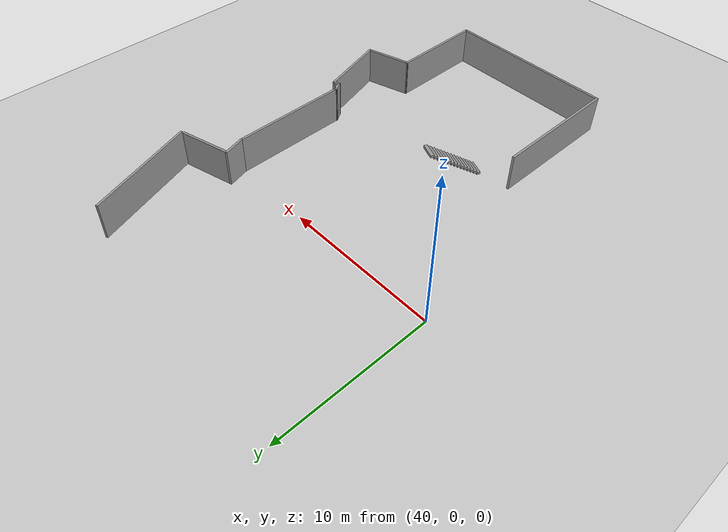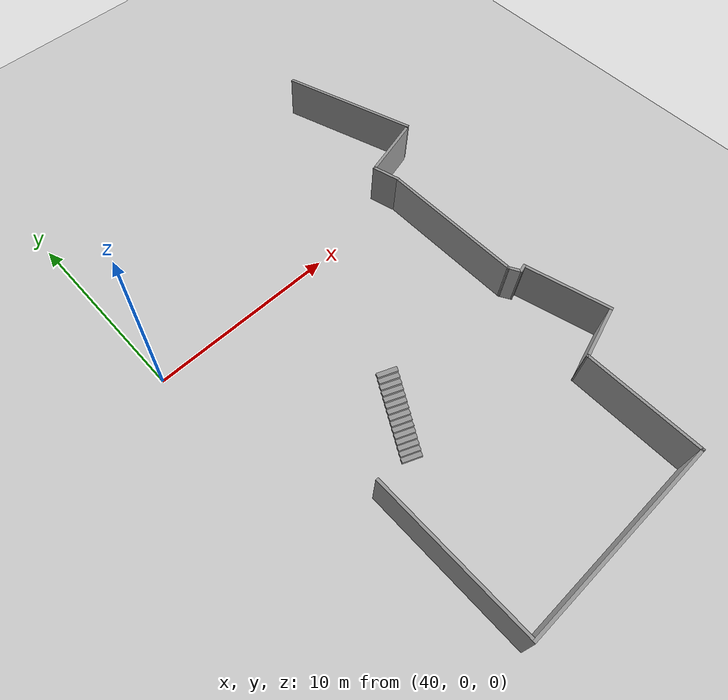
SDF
<sdf version="1.6">
 <world name="default">
  <model name="ground_plane">
   <static>1</static>
   <link name="link">
    <collision name="collision">
     <geometry><plane><normal>0 0 1</normal><size>100 100</size></plane></geometry>
     <surface><friction><ode><mu>100</mu><mu2>50</mu2></ode></friction></surface>
    </collision>
    <visual name="visual">
     <cast_shadows>0</cast_shadows>
     <geometry><plane><normal>0 0 1</normal><size>100 100</size></plane></geometry>
     <material>
      <script><uri>file://media/materials/scripts/gazebo.material</uri><name>Gazebo/Grey</name></script>
     </material>
    </visual>
   </link>
  </model>
  <model name="215">
   <link name="Wall_152">
    <pose>-7.36818 -9.2971 0 0 0 -1.5708</pose>
    <visual name="Wall_152_Visual">
     <pose>0 0 1.25 0 -0 0</pose>
     <geometry><box><size>8.387 0.15 2.5</size></box></geometry>
     <material>
      <script><uri>file://media/materials/scripts/gazebo.material</uri><name>Gazebo/Grey</name></script>
      <ambient>1 1 1 1</ambient>
      <shader type="pixel"/>
     </material>
     <meta><layer>0</layer></meta>
    </visual>
    <collision name="Wall_152_Collision">
     <pose>0 0 1.25 0 -0 0</pose>
     <geometry><box><size>8.387 0.15 2.5</size></box></geometry>
     <surface>
      <friction>
       <ode><mu>1</mu><mu2>1</mu2><fdir1>0 0 0</fdir1><slip1>0</slip1><slip2>0</slip2></ode>
       <torsional>
        <coefficient>1</coefficient>
        <patch_radius>0</patch_radius>
        <surface_radius>0</surface_radius>
        <use_patch_radius>1</use_patch_radius>
        <ode><slip>0</slip></ode>
       </torsional>
      </friction>
      <bounce><restitution_coefficient>0</restitution_coefficient><threshold>1e+06</threshold></bounce>
      <contact>
       <collide_without_contact>0</collide_without_contact>
       <collide_without_contact_bitmask>1</collide_without_contact_bitmask>
       <collide_bitmask>1</collide_bitmask>
       <ode>
        <soft_cfm>0</soft_cfm>
        <soft_erp>0.2</soft_erp>
        <kp>1e+13</kp>
        <kd>1</kd>
        <max_vel>0.01</max_vel>
        <min_depth>0</min_depth>
       </ode>
       <bullet>
        <split_impulse>1</split_impulse>
        <split_impulse_penetration_threshold>-0.01</split_impulse_penetration_threshold>
        <soft_cfm>0</soft_cfm>
        <soft_erp>0.2</soft_erp>
        <kp>1e+13</kp>
        <kd>1</kd>
       </bullet>
      </contact>
     </surface>
    </collision>
   </link>
   <link name="Wall_153">
    <pose>-1.91868 -13.4156 0 0 -0 0</pose>
    <visual name="Wall_153_Visual">
     <pose>0 0 1.25 0 -0 0</pose>
     <geometry><box><size>11.049 0.15 2.5</size></box></geometry>
     <material>
      <script><uri>file://media/materials/scripts/gazebo.material</uri><name>Gazebo/Grey</name></script>
      <ambient>1 1 1 1</ambient>
      <shader type="pixel"/>
     </material>
     <meta><layer>0</layer></meta>
    </visual>
    <collision name="Wall_153_Collision">
     <pose>0 0 1.25 0 -0 0</pose>
     <geometry><box><size>11.049 0.15 2.5</size></box></geometry>
     <surface>
      <friction>
       <ode><mu>1</mu><mu2>1</mu2><fdir1>0 0 0</fdir1><slip1>0</slip1><slip2>0</slip2></ode>
       <torsional>
        <coefficient>1</coefficient>
        <patch_radius>0</patch_radius>
        <surface_radius>0</surface_radius>
        <use_patch_radius>1</use_patch_radius>
        <ode><slip>0</slip></ode>
       </torsional>
      </friction>
      <bounce><restitution_coefficient>0</restitution_coefficient><threshold>1e+06</threshold></bounce>
      <contact>
       <collide_without_contact>0</collide_without_contact>
       <collide_without_contact_bitmask>1</collide_without_contact_bitmask>
       <collide_bitmask>1</collide_bitmask>
       <ode>
        <soft_cfm>0</soft_cfm>
        <soft_erp>0.2</soft_erp>
        <kp>1e+13</kp>
        <kd>1</kd>
        <max_vel>0.01</max_vel>
        <min_depth>0</min_depth>
       </ode>
       <bullet>
        <split_impulse>1</split_impulse>
        <split_impulse_penetration_threshold>-0.01</split_impulse_penetration_threshold>
        <soft_cfm>0</soft_cfm>
        <soft_erp>0.2</soft_erp>
        <kp>1e+13</kp>
        <kd>1</kd>
       </bullet>
      </contact>
     </surface>
    </collision>
   </link>
   <link name="Wall_154">
    <pose>3.53082 -10.4426 0 0 -0 1.5708</pose>
    <visual name="Wall_154_Visual">
     <pose>0 0 1.25 0 -0 0</pose>
     <geometry><box><size>6.096 0.15 2.5</size></box></geometry>
     <material>
      <script><uri>file://media/materials/scripts/gazebo.material</uri><name>Gazebo/Grey</name></script>
      <ambient>1 1 1 1</ambient>
      <shader type="pixel"/>
     </material>
     <meta><layer>0</layer></meta>
    </visual>
    <collision name="Wall_154_Collision">
     <pose>0 0 1.25 0 -0 0</pose>
     <geometry><box><size>6.096 0.15 2.5</size></box></geometry>
     <surface>
      <friction>
       <ode><mu>1</mu><mu2>1</mu2><fdir1>0 0 0</fdir1><slip1>0</slip1><slip2>0</slip2></ode>
       <torsional>
        <coefficient>1</coefficient>
        <patch_radius>0</patch_radius>
        <surface_radius>0</surface_radius>
        <use_patch_radius>1</use_patch_radius>
        <ode><slip>0</slip></ode>
       </torsional>
      </friction>
      <bounce><restitution_coefficient>0</restitution_coefficient><threshold>1e+06</threshold></bounce>
      <contact>
       <collide_without_contact>0</collide_without_contact>
       <collide_without_contact_bitmask>1</collide_without_contact_bitmask>
       <collide_bitmask>1</collide_bitmask>
       <ode>
        <soft_cfm>0</soft_cfm>
        <soft_erp>0.2</soft_erp>
        <kp>1e+13</kp>
        <kd>1</kd>
        <max_vel>0.01</max_vel>
        <min_depth>0</min_depth>
       </ode>
       <bullet>
        <split_impulse>1</split_impulse>
        <split_impulse_penetration_threshold>-0.01</split_impulse_penetration_threshold>
        <soft_cfm>0</soft_cfm>
        <soft_erp>0.2</soft_erp>
        <kp>1e+13</kp>
        <kd>1</kd>
       </bullet>
      </contact>
     </surface>
    </collision>
   </link>
   <link name="Wall_155">
    <pose>4.92324 -7.06863 0 0 -0 0.280382</pose>
    <visual name="Wall_155_Visual">
     <pose>0 0 1.25 0 -0 0</pose>
     <geometry><box><size>3.048 0.15 2.5</size></box></geometry>
     <material>
      <script><uri>file://media/materials/scripts/gazebo.material</uri><name>Gazebo/Grey</name></script>
      <ambient>1 1 1 1</ambient>
      <shader type="pixel"/>
     </material>
     <meta><layer>0</layer></meta>
    </visual>
    <collision name="Wall_155_Collision">
     <pose>0 0 1.25 0 -0 0</pose>
     <geometry><box><size>3.048 0.15 2.5</size></box></geometry>
     <surface>
      <friction>
       <ode><mu>1</mu><mu2>1</mu2><fdir1>0 0 0</fdir1><slip1>0</slip1><slip2>0</slip2></ode>
       <torsional>
        <coefficient>1</coefficient>
        <patch_radius>0</patch_radius>
        <surface_radius>0</surface_radius>
        <use_patch_radius>1</use_patch_radius>
        <ode><slip>0</slip></ode>
       </torsional>
      </friction>
      <bounce><restitution_coefficient>0</restitution_coefficient><threshold>1e+06</threshold></bounce>
      <contact>
       <collide_without_contact>0</collide_without_contact>
       <collide_without_contact_bitmask>1</collide_without_contact_bitmask>
       <collide_bitmask>1</collide_bitmask>
       <ode>
        <soft_cfm>0</soft_cfm>
        <soft_erp>0.2</soft_erp>
        <kp>1e+13</kp>
        <kd>1</kd>
        <max_vel>0.01</max_vel>
        <min_depth>0</min_depth>
       </ode>
       <bullet>
        <split_impulse>1</split_impulse>
        <split_impulse_penetration_threshold>-0.01</split_impulse_penetration_threshold>
        <soft_cfm>0</soft_cfm>
        <soft_erp>0.2</soft_erp>
        <kp>1e+13</kp>
        <kd>1</kd>
       </bullet>
      </contact>
     </surface>
    </collision>
   </link>
   <link name="Wall_156">
    <pose>5.7434 -4.53199 0 0 -0 1.8326</pose>
    <visual name="Wall_156_Visual">
     <pose>0 0 1.25 0 -0 0</pose>
     <geometry><box><size>4.572 0.15 2.5</size></box></geometry>
     <material>
      <script><uri>file://media/materials/scripts/gazebo.material</uri><name>Gazebo/Grey</name></script>
      <ambient>1 1 1 1</ambient>
      <shader type="pixel"/>
     </material>
     <meta><layer>0</layer></meta>
    </visual>
    <collision name="Wall_156_Collision">
     <pose>0 0 1.25 0 -0 0</pose>
     <geometry><box><size>4.572 0.15 2.5</size></box></geometry>
     <surface>
      <friction>
       <ode><mu>1</mu><mu2>1</mu2><fdir1>0 0 0</fdir1><slip1>0</slip1><slip2>0</slip2></ode>
       <torsional>
        <coefficient>1</coefficient>
        <patch_radius>0</patch_radius>
        <surface_radius>0</surface_radius>
        <use_patch_radius>1</use_patch_radius>
        <ode><slip>0</slip></ode>
       </torsional>
      </friction>
      <bounce><restitution_coefficient>0</restitution_coefficient><threshold>1e+06</threshold></bounce>
      <contact>
       <collide_without_contact>0</collide_without_contact>
       <collide_without_contact_bitmask>1</collide_without_contact_bitmask>
       <collide_bitmask>1</collide_bitmask>
       <ode>
        <soft_cfm>0</soft_cfm>
        <soft_erp>0.2</soft_erp>
        <kp>1e+13</kp>
        <kd>1</kd>
        <max_vel>0.01</max_vel>
        <min_depth>0</min_depth>
       </ode>
       <bullet>
        <split_impulse>1</split_impulse>
        <split_impulse_penetration_threshold>-0.01</split_impulse_penetration_threshold>
        <soft_cfm>0</soft_cfm>
        <soft_erp>0.2</soft_erp>
        <kp>1e+13</kp>
        <kd>1</kd>
       </bullet>
      </contact>
     </surface>
    </collision>
   </link>
   <link name="Wall_157">
    <pose>5.00212 -2.44162 0 0 0 -2.87979</pose>
    <visual name="Wall_157_Visual">
     <pose>0 0 1.25 0 -0 0</pose>
     <geometry><box><size>0.5 0.15 2.5</size></box></geometry>
     <material>
      <script><uri>file://media/materials/scripts/gazebo.material</uri><name>Gazebo/Grey</name></script>
      <ambient>1 1 1 1</ambient>
      <shader type="pixel"/>
     </material>
     <meta><layer>0</layer></meta>
    </visual>
    <collision name="Wall_157_Collision">
     <pose>0 0 1.25 0 -0 0</pose>
     <geometry><box><size>0.5 0.15 2.5</size></box></geometry>
     <surface>
      <friction>
       <ode><mu>1</mu><mu2>1</mu2><fdir1>0 0 0</fdir1><slip1>0</slip1><slip2>0</slip2></ode>
       <torsional>
        <coefficient>1</coefficient>
        <patch_radius>0</patch_radius>
        <surface_radius>0</surface_radius>
        <use_patch_radius>1</use_patch_radius>
        <ode><slip>0</slip></ode>
       </torsional>
      </friction>
      <bounce><restitution_coefficient>0</restitution_coefficient><threshold>1e+06</threshold></bounce>
      <contact>
       <collide_without_contact>0</collide_without_contact>
       <collide_without_contact_bitmask>1</collide_without_contact_bitmask>
       <collide_bitmask>1</collide_bitmask>
       <ode>
        <soft_cfm>0</soft_cfm>
        <soft_erp>0.2</soft_erp>
        <kp>1e+13</kp>
        <kd>1</kd>
        <max_vel>0.01</max_vel>
        <min_depth>0</min_depth>
       </ode>
       <bullet>
        <split_impulse>1</split_impulse>
        <split_impulse_penetration_threshold>-0.01</split_impulse_penetration_threshold>
        <soft_cfm>0</soft_cfm>
        <soft_erp>0.2</soft_erp>
        <kp>1e+13</kp>
        <kd>1</kd>
       </bullet>
      </contact>
     </surface>
    </collision>
   </link>
   <link name="Wall_158">
    <pose>4.68308 -2.22711 0 0 -0 2.0944</pose>
    <visual name="Wall_158_Visual">
     <pose>0 0 1.25 0 -0 0</pose>
     <geometry><box><size>0.75 0.15 2.5</size></box></geometry>
     <material>
      <script><uri>file://media/materials/scripts/gazebo.material</uri><name>Gazebo/Grey</name></script>
      <ambient>1 1 1 1</ambient>
      <shader type="pixel"/>
     </material>
     <meta><layer>0</layer></meta>
    </visual>
    <collision name="Wall_158_Collision">
     <pose>0 0 1.25 0 -0 0</pose>
     <geometry><box><size>0.75 0.15 2.5</size></box></geometry>
     <surface>
      <friction>
       <ode><mu>1</mu><mu2>1</mu2><fdir1>0 0 0</fdir1><slip1>0</slip1><slip2>0</slip2></ode>
       <torsional>
        <coefficient>1</coefficient>
        <patch_radius>0</patch_radius>
        <surface_radius>0</surface_radius>
        <use_patch_radius>1</use_patch_radius>
        <ode><slip>0</slip></ode>
       </torsional>
      </friction>
      <bounce><restitution_coefficient>0</restitution_coefficient><threshold>1e+06</threshold></bounce>
      <contact>
       <collide_without_contact>0</collide_without_contact>
       <collide_without_contact_bitmask>1</collide_without_contact_bitmask>
       <collide_bitmask>1</collide_bitmask>
       <ode>
        <soft_cfm>0</soft_cfm>
        <soft_erp>0.2</soft_erp>
        <kp>1e+13</kp>
        <kd>1</kd>
        <max_vel>0.01</max_vel>
        <min_depth>0</min_depth>
       </ode>
       <bullet>
        <split_impulse>1</split_impulse>
        <split_impulse_penetration_threshold>-0.01</split_impulse_penetration_threshold>
        <soft_cfm>0</soft_cfm>
        <soft_erp>0.2</soft_erp>
        <kp>1e+13</kp>
        <kd>1</kd>
       </bullet>
      </contact>
     </surface>
    </collision>
   </link>
   <link name="Wall_159">
    <pose>4.53308 1.7677 0 0 -0 1.5708</pose>
    <visual name="Wall_159_Visual">
     <pose>0 0 1.25 0 -0 0</pose>
     <geometry><box><size>7.62 0.15 2.5</size></box></geometry>
     <material>
      <script><uri>file://media/materials/scripts/gazebo.material</uri><name>Gazebo/Grey</name></script>
      <ambient>1 1 1 1</ambient>
      <shader type="pixel"/>
     </material>
     <meta><layer>0</layer></meta>
    </visual>
    <collision name="Wall_159_Collision">
     <pose>0 0 1.25 0 -0 0</pose>
     <geometry><box><size>7.62 0.15 2.5</size></box></geometry>
     <surface>
      <friction>
       <ode><mu>1</mu><mu2>1</mu2><fdir1>0 0 0</fdir1><slip1>0</slip1><slip2>0</slip2></ode>
       <torsional>
        <coefficient>1</coefficient>
        <patch_radius>0</patch_radius>
        <surface_radius>0</surface_radius>
        <use_patch_radius>1</use_patch_radius>
        <ode><slip>0</slip></ode>
       </torsional>
      </friction>
      <bounce><restitution_coefficient>0</restitution_coefficient><threshold>1e+06</threshold></bounce>
      <contact>
       <collide_without_contact>0</collide_without_contact>
       <collide_without_contact_bitmask>1</collide_without_contact_bitmask>
       <collide_bitmask>1</collide_bitmask>
       <ode>
        <soft_cfm>0</soft_cfm>
        <soft_erp>0.2</soft_erp>
        <kp>1e+13</kp>
        <kd>1</kd>
        <max_vel>0.01</max_vel>
        <min_depth>0</min_depth>
       </ode>
       <bullet>
        <split_impulse>1</split_impulse>
        <split_impulse_penetration_threshold>-0.01</split_impulse_penetration_threshold>
        <soft_cfm>0</soft_cfm>
        <soft_erp>0.2</soft_erp>
        <kp>1e+13</kp>
        <kd>1</kd>
       </bullet>
      </contact>
     </surface>
    </collision>
   </link>
   <link name="Wall_160">
    <pose>4.35838 6.1547 0 0 -0 1.8326</pose>
    <visual name="Wall_160_Visual">
     <pose>0 0 1.25 0 -0 0</pose>
     <geometry><box><size>1.5 0.15 2.5</size></box></geometry>
     <material>
      <script><uri>file://media/materials/scripts/gazebo.material</uri><name>Gazebo/Grey</name></script>
      <ambient>1 1 1 1</ambient>
      <shader type="pixel"/>
     </material>
     <meta><layer>0</layer></meta>
    </visual>
    <collision name="Wall_160_Collision">
     <pose>0 0 1.25 0 -0 0</pose>
     <geometry><box><size>1.5 0.15 2.5</size></box></geometry>
     <surface>
      <friction>
       <ode><mu>1</mu><mu2>1</mu2><fdir1>0 0 0</fdir1><slip1>0</slip1><slip2>0</slip2></ode>
       <torsional>
        <coefficient>1</coefficient>
        <patch_radius>0</patch_radius>
        <surface_radius>0</surface_radius>
        <use_patch_radius>1</use_patch_radius>
        <ode><slip>0</slip></ode>
       </torsional>
      </friction>
      <bounce><restitution_coefficient>0</restitution_coefficient><threshold>1e+06</threshold></bounce>
      <contact>
       <collide_without_contact>0</collide_without_contact>
       <collide_without_contact_bitmask>1</collide_without_contact_bitmask>
       <collide_bitmask>1</collide_bitmask>
       <ode>
        <soft_cfm>0</soft_cfm>
        <soft_erp>0.2</soft_erp>
        <kp>1e+13</kp>
        <kd>1</kd>
        <max_vel>0.01</max_vel>
        <min_depth>0</min_depth>
       </ode>
       <bullet>
        <split_impulse>1</split_impulse>
        <split_impulse_penetration_threshold>-0.01</split_impulse_penetration_threshold>
        <soft_cfm>0</soft_cfm>
        <soft_erp>0.2</soft_erp>
        <kp>1e+13</kp>
        <kd>1</kd>
       </bullet>
      </contact>
     </surface>
    </collision>
   </link>
   <link name="Wall_161">
    <pose>5.7675 7.23102 0 0 -0 0.261764</pose>
    <visual name="Wall_161_Visual">
     <pose>0 0 1.25 0 -0 0</pose>
     <geometry><box><size>3.429 0.15 2.5</size></box></geometry>
     <material>
      <script><uri>file://media/materials/scripts/gazebo.material</uri><name>Gazebo/Grey</name></script>
      <ambient>1 1 1 1</ambient>
      <shader type="pixel"/>
     </material>
     <meta><layer>0</layer></meta>
    </visual>
    <collision name="Wall_161_Collision">
     <pose>0 0 1.25 0 -0 0</pose>
     <geometry><box><size>3.429 0.15 2.5</size></box></geometry>
     <surface>
      <friction>
       <ode><mu>1</mu><mu2>1</mu2><fdir1>0 0 0</fdir1><slip1>0</slip1><slip2>0</slip2></ode>
       <torsional>
        <coefficient>1</coefficient>
        <patch_radius>0</patch_radius>
        <surface_radius>0</surface_radius>
        <use_patch_radius>1</use_patch_radius>
        <ode><slip>0</slip></ode>
       </torsional>
      </friction>
      <bounce><restitution_coefficient>0</restitution_coefficient><threshold>1e+06</threshold></bounce>
      <contact>
       <collide_without_contact>0</collide_without_contact>
       <collide_without_contact_bitmask>1</collide_without_contact_bitmask>
       <collide_bitmask>1</collide_bitmask>
       <ode>
        <soft_cfm>0</soft_cfm>
        <soft_erp>0.2</soft_erp>
        <kp>1e+13</kp>
        <kd>1</kd>
        <max_vel>0.01</max_vel>
        <min_depth>0</min_depth>
       </ode>
       <bullet>
        <split_impulse>1</split_impulse>
        <split_impulse_penetration_threshold>-0.01</split_impulse_penetration_threshold>
        <soft_cfm>0</soft_cfm>
        <soft_erp>0.2</soft_erp>
        <kp>1e+13</kp>
        <kd>1</kd>
       </bullet>
      </contact>
     </surface>
    </collision>
   </link>
   <link name="Wall_162">
    <pose>6.4174 11.1408 0 0 -0 1.89116</pose>
    <inertial>
     <inertia><ixx>0</ixx><ixy>0</ixy><ixz>0</ixz><iyy>0</iyy><iyz>0</iyz><izz>0</izz></inertia>
     <mass>0</mass>
    </inertial>
    <visual name="Wall_162_Visual">
     <pose>0 0 1.25 0 -0 0</pose>
     <geometry><box><size>7.2735 0.15 2.5</size></box></geometry>
     <material>
      <script><uri>file://media/materials/scripts/gazebo.material</uri><name>Gazebo/Grey</name></script>
      <ambient>1 1 1 1</ambient>
      <shader type="pixel"/>
     </material>
     <meta><layer>0</layer></meta>
    </visual>
    <collision name="Wall_162_Collision">
     <pose>0 0 1.25 0 -0 0</pose>
     <geometry><box><size>7.2735 0.15 2.5</size></box></geometry>
     <surface>
      <friction>
       <ode><mu>1</mu><mu2>1</mu2><fdir1>0 0 0</fdir1><slip1>0</slip1><slip2>0</slip2></ode>
       <torsional>
        <coefficient>1</coefficient>
        <patch_radius>0</patch_radius>
        <surface_radius>0</surface_radius>
        <use_patch_radius>1</use_patch_radius>
        <ode><slip>0</slip></ode>
       </torsional>
      </friction>
      <bounce><restitution_coefficient>0</restitution_coefficient><threshold>1e+06</threshold></bounce>
      <contact>
       <collide_without_contact>0</collide_without_contact>
       <collide_without_contact_bitmask>1</collide_without_contact_bitmask>
       <collide_bitmask>1</collide_bitmask>
       <ode>
        <soft_cfm>0</soft_cfm>
        <soft_erp>0.2</soft_erp>
        <kp>1e+13</kp>
        <kd>1</kd>
        <max_vel>0.01</max_vel>
        <min_depth>0</min_depth>
       </ode>
       <bullet>
        <split_impulse>1</split_impulse>
        <split_impulse_penetration_threshold>-0.01</split_impulse_penetration_threshold>
        <soft_cfm>0</soft_cfm>
        <soft_erp>0.2</soft_erp>
        <kp>1e+13</kp>
        <kd>1</kd>
       </bullet>
      </contact>
     </surface>
    </collision>
   </link>
   <static>1</static>
   <pose>50.8353 -5.6064 0 0 -0 0</pose>
  </model>
  <model name="Staircase_2">
   <link name="Stairs_0">
    <visual name="Stairs_0_Visual_2">
     <pose>-1.16667 -0 0.416667 0 -0 1.5708</pose>
     <geometry><box><size>1 0.233333 0.166667</size></box></geometry>
     <material>
      <script><uri>file://media/materials/scripts/gazebo.material</uri><name>Gazebo/Grey</name></script>
      <ambient>1 1 1 1</ambient>
      <shader type="pixel"/>
     </material>
     <meta><layer>0</layer></meta>
    </visual>
    <visual name="Stairs_0_Visual_3">
     <pose>-0.933333 -0 0.583333 0 -0 1.5708</pose>
     <geometry><box><size>1 0.233333 0.166667</size></box></geometry>
     <material>
      <script><uri>file://media/materials/scripts/gazebo.material</uri><name>Gazebo/Grey</name></script>
      <ambient>1 1 1 1</ambient>
      <shader type="pixel"/>
     </material>
     <meta><layer>0</layer></meta>
    </visual>
    <visual name="Stairs_0_Visual_4">
     <pose>-0.7 0 0.75 0 -0 1.5708</pose>
     <geometry><box><size>1 0.233333 0.166667</size></box></geometry>
     <material>
      <script><uri>file://media/materials/scripts/gazebo.material</uri><name>Gazebo/Grey</name></script>
      <ambient>1 1 1 1</ambient>
      <shader type="pixel"/>
     </material>
     <meta><layer>0</layer></meta>
    </visual>
    <visual name="Stairs_0_Visual_5">
     <pose>-0.466667 0 0.916667 0 -0 1.5708</pose>
     <geometry><box><size>1 0.233333 0.166667</size></box></geometry>
     <material>
      <script><uri>file://media/materials/scripts/gazebo.material</uri><name>Gazebo/Grey</name></script>
      <ambient>1 1 1 1</ambient>
      <shader type="pixel"/>
     </material>
     <meta><layer>0</layer></meta>
    </visual>
    <visual name="Stairs_0_Visual_6">
     <pose>-0.233333 0 1.08333 0 -0 1.5708</pose>
     <geometry><box><size>1 0.233333 0.166667</size></box></geometry>
     <material>
      <script><uri>file://media/materials/scripts/gazebo.material</uri><name>Gazebo/Grey</name></script>
      <ambient>1 1 1 1</ambient>
      <shader type="pixel"/>
     </material>
     <meta><layer>0</layer></meta>
    </visual>
    <visual name="Stairs_0_Visual_7">
     <pose>0 0 1.25 0 -0 1.5708</pose>
     <geometry><box><size>1 0.233333 0.166667</size></box></geometry>
     <material>
      <script><uri>file://media/materials/scripts/gazebo.material</uri><name>Gazebo/Grey</name></script>
      <ambient>1 1 1 1</ambient>
      <shader type="pixel"/>
     </material>
     <meta><layer>0</layer></meta>
    </visual>
    <visual name="Stairs_0_Visual_8">
     <pose>0.233333 0 1.41667 0 -0 1.5708</pose>
     <geometry><box><size>1 0.233333 0.166667</size></box></geometry>
     <material>
      <script><uri>file://media/materials/scripts/gazebo.material</uri><name>Gazebo/Grey</name></script>
      <ambient>1 1 1 1</ambient>
      <shader type="pixel"/>
     </material>
     <meta><layer>0</layer></meta>
    </visual>
    <visual name="Stairs_0_Visual_9">
     <pose>0.466667 0 1.58333 0 -0 1.5708</pose>
     <geometry><box><size>1 0.233333 0.166667</size></box></geometry>
     <material>
      <script><uri>file://media/materials/scripts/gazebo.material</uri><name>Gazebo/Grey</name></script>
      <ambient>1 1 1 1</ambient>
      <shader type="pixel"/>
     </material>
     <meta><layer>0</layer></meta>
    </visual>
    <visual name="Stairs_0_Visual_10">
     <pose>0.7 0 1.75 0 -0 1.5708</pose>
     <geometry><box><size>1 0.233333 0.166667</size></box></geometry>
     <material>
      <script><uri>file://media/materials/scripts/gazebo.material</uri><name>Gazebo/Grey</name></script>
      <ambient>1 1 1 1</ambient>
      <shader type="pixel"/>
     </material>
     <meta><layer>0</layer></meta>
    </visual>
    <visual name="Stairs_0_Visual_11">
     <pose>0.933334 0 1.91667 0 -0 1.5708</pose>
     <geometry><box><size>1 0.233333 0.166667</size></box></geometry>
     <material>
      <script><uri>file://media/materials/scripts/gazebo.material</uri><name>Gazebo/Grey</name></script>
      <ambient>1 1 1 1</ambient>
      <shader type="pixel"/>
     </material>
     <meta><layer>0</layer></meta>
    </visual>
    <visual name="Stairs_0_Visual_12">
     <pose>1.16667 0 2.08333 0 -0 1.5708</pose>
     <geometry><box><size>1 0.233333 0.166667</size></box></geometry>
     <material>
      <script><uri>file://media/materials/scripts/gazebo.material</uri><name>Gazebo/Grey</name></script>
      <ambient>1 1 1 1</ambient>
      <shader type="pixel"/>
     </material>
     <meta><layer>0</layer></meta>
    </visual>
    <visual name="Stairs_0_Visual_13">
     <pose>1.4 0 2.25 0 -0 1.5708</pose>
     <geometry><box><size>1 0.233333 0.166667</size></box></geometry>
     <material>
      <script><uri>file://media/materials/scripts/gazebo.material</uri><name>Gazebo/Grey</name></script>
      <ambient>1 1 1 1</ambient>
      <shader type="pixel"/>
     </material>
     <meta><layer>0</layer></meta>
    </visual>
    <visual name="Stairs_0_Visual_14">
     <pose>1.63333 0 2.41667 0 -0 1.5708</pose>
     <geometry><box><size>1 0.233333 0.166667</size></box></geometry>
     <material>
      <script><uri>file://media/materials/scripts/gazebo.material</uri><name>Gazebo/Grey</name></script>
      <ambient>1 1 1 1</ambient>
      <shader type="pixel"/>
     </material>
     <meta><layer>0</layer></meta>
    </visual>
    <visual name="Stairs_0_Visual_0">
     <pose>-1.63333 -0 0.083333 0 -0 1.5708</pose>
     <geometry><box><size>1 0.233333 0.166667</size></box></geometry>
     <material>
      <script><uri>file://media/materials/scripts/gazebo.material</uri><name>Gazebo/Grey</name></script>
      <ambient>1 1 1 1</ambient>
      <shader type="pixel"/>
     </material>
     <meta><layer>0</layer></meta>
    </visual>
    <visual name="Stairs_0_Visual_1">
     <pose>-1.4 -0 0.25 0 -0 1.5708</pose>
     <geometry><box><size>1 0.233333 0.166667</size></box></geometry>
     <material>
      <script><uri>file://media/materials/scripts/gazebo.material</uri><name>Gazebo/Grey</name></script>
      <ambient>1 1 1 1</ambient>
      <shader type="pixel"/>
     </material>
     <meta><layer>0</layer></meta>
    </visual>
    <collision name="Stairs_0_Collision_0">
     <pose>-1.63333 0 0.083333 0 -0 1.5708</pose>
     <geometry><box><size>1 0.233333 0.166667</size></box></geometry>
     <surface>
      <friction>
       <ode><mu>1</mu><mu2>1</mu2><fdir1>0 0 0</fdir1><slip1>0</slip1><slip2>0</slip2></ode>
       <torsional>
        <coefficient>1</coefficient>
        <patch_radius>0</patch_radius>
        <surface_radius>0</surface_radius>
        <use_patch_radius>1</use_patch_radius>
        <ode><slip>0</slip></ode>
       </torsional>
      </friction>
      <bounce><restitution_coefficient>0</restitution_coefficient><threshold>1e+06</threshold></bounce>
      <contact>
       <collide_without_contact>0</collide_without_contact>
       <collide_without_contact_bitmask>1</collide_without_contact_bitmask>
       <collide_bitmask>1</collide_bitmask>
       <ode>
        <soft_cfm>0</soft_cfm>
        <soft_erp>0.2</soft_erp>
        <kp>1e+13</kp>
        <kd>1</kd>
        <max_vel>0.01</max_vel>
        <min_depth>0</min_depth>
       </ode>
       <bullet>
        <split_impulse>1</split_impulse>
        <split_impulse_penetration_threshold>-0.01</split_impulse_penetration_threshold>
        <soft_cfm>0</soft_cfm>
        <soft_erp>0.2</soft_erp>
        <kp>1e+13</kp>
        <kd>1</kd>
       </bullet>
      </contact>
     </surface>
    </collision>
    <collision name="Stairs_0_Collision_1">
     <pose>-1.4 0 0.25 0 -0 1.5708</pose>
     <geometry><box><size>1 0.233333 0.166667</size></box></geometry>
     <surface>
      <friction>
       <ode><mu>1</mu><mu2>1</mu2><fdir1>0 0 0</fdir1><slip1>0</slip1><slip2>0</slip2></ode>
       <torsional>
        <coefficient>1</coefficient>
        <patch_radius>0</patch_radius>
        <surface_radius>0</surface_radius>
        <use_patch_radius>1</use_patch_radius>
        <ode><slip>0</slip></ode>
       </torsional>
      </friction>
      <bounce><restitution_coefficient>0</restitution_coefficient><threshold>1e+06</threshold></bounce>
      <contact>
       <collide_without_contact>0</collide_without_contact>
       <collide_without_contact_bitmask>1</collide_without_contact_bitmask>
       <collide_bitmask>1</collide_bitmask>
       <ode>
        <soft_cfm>0</soft_cfm>
        <soft_erp>0.2</soft_erp>
        <kp>1e+13</kp>
        <kd>1</kd>
        <max_vel>0.01</max_vel>
        <min_depth>0</min_depth>
       </ode>
       <bullet>
        <split_impulse>1</split_impulse>
        <split_impulse_penetration_threshold>-0.01</split_impulse_penetration_threshold>
        <soft_cfm>0</soft_cfm>
        <soft_erp>0.2</soft_erp>
        <kp>1e+13</kp>
        <kd>1</kd>
       </bullet>
      </contact>
     </surface>
    </collision>
    <collision name="Stairs_0_Collision_2">
     <pose>-1.16667 0 0.416667 0 -0 1.5708</pose>
     <geometry><box><size>1 0.233333 0.166667</size></box></geometry>
     <surface>
      <friction>
       <ode><mu>1</mu><mu2>1</mu2><fdir1>0 0 0</fdir1><slip1>0</slip1><slip2>0</slip2></ode>
       <torsional>
        <coefficient>1</coefficient>
        <patch_radius>0</patch_radius>
        <surface_radius>0</surface_radius>
        <use_patch_radius>1</use_patch_radius>
        <ode><slip>0</slip></ode>
       </torsional>
      </friction>
      <bounce><restitution_coefficient>0</restitution_coefficient><threshold>1e+06</threshold></bounce>
      <contact>
       <collide_without_contact>0</collide_without_contact>
       <collide_without_contact_bitmask>1</collide_without_contact_bitmask>
       <collide_bitmask>1</collide_bitmask>
       <ode>
        <soft_cfm>0</soft_cfm>
        <soft_erp>0.2</soft_erp>
        <kp>1e+13</kp>
        <kd>1</kd>
        <max_vel>0.01</max_vel>
        <min_depth>0</min_depth>
       </ode>
       <bullet>
        <split_impulse>1</split_impulse>
        <split_impulse_penetration_threshold>-0.01</split_impulse_penetration_threshold>
        <soft_cfm>0</soft_cfm>
        <soft_erp>0.2</soft_erp>
        <kp>1e+13</kp>
        <kd>1</kd>
       </bullet>
      </contact>
     </surface>
    </collision>
    <collision name="Stairs_0_Collision_3">
     <pose>-0.933333 0 0.583333 0 -0 1.5708</pose>
     <geometry><box><size>1 0.233333 0.166667</size></box></geometry>
     <surface>
      <friction>
       <ode><mu>1</mu><mu2>1</mu2><fdir1>0 0 0</fdir1><slip1>0</slip1><slip2>0</slip2></ode>
       <torsional>
        <coefficient>1</coefficient>
        <patch_radius>0</patch_radius>
        <surface_radius>0</surface_radius>
        <use_patch_radius>1</use_patch_radius>
        <ode><slip>0</slip></ode>
       </torsional>
      </friction>
      <bounce><restitution_coefficient>0</restitution_coefficient><threshold>1e+06</threshold></bounce>
      <contact>
       <collide_without_contact>0</collide_without_contact>
       <collide_without_contact_bitmask>1</collide_without_contact_bitmask>
       <collide_bitmask>1</collide_bitmask>
       <ode>
        <soft_cfm>0</soft_cfm>
        <soft_erp>0.2</soft_erp>
        <kp>1e+13</kp>
        <kd>1</kd>
        <max_vel>0.01</max_vel>
        <min_depth>0</min_depth>
       </ode>
       <bullet>
        <split_impulse>1</split_impulse>
        <split_impulse_penetration_threshold>-0.01</split_impulse_penetration_threshold>
        <soft_cfm>0</soft_cfm>
        <soft_erp>0.2</soft_erp>
        <kp>1e+13</kp>
        <kd>1</kd>
       </bullet>
      </contact>
     </surface>
    </collision>
    <collision name="Stairs_0_Collision_4">
     <pose>-0.7 0 0.75 0 -0 1.5708</pose>
     <geometry><box><size>1 0.233333 0.166667</size></box></geometry>
     <surface>
      <friction>
       <ode><mu>1</mu><mu2>1</mu2><fdir1>0 0 0</fdir1><slip1>0</slip1><slip2>0</slip2></ode>
       <torsional>
        <coefficient>1</coefficient>
        <patch_radius>0</patch_radius>
        <surface_radius>0</surface_radius>
        <use_patch_radius>1</use_patch_radius>
        <ode><slip>0</slip></ode>
       </torsional>
      </friction>
      <bounce><restitution_coefficient>0</restitution_coefficient><threshold>1e+06</threshold></bounce>
      <contact>
       <collide_without_contact>0</collide_without_contact>
       <collide_without_contact_bitmask>1</collide_without_contact_bitmask>
       <collide_bitmask>1</collide_bitmask>
       <ode>
        <soft_cfm>0</soft_cfm>
        <soft_erp>0.2</soft_erp>
        <kp>1e+13</kp>
        <kd>1</kd>
        <max_vel>0.01</max_vel>
        <min_depth>0</min_depth>
       </ode>
       <bullet>
        <split_impulse>1</split_impulse>
        <split_impulse_penetration_threshold>-0.01</split_impulse_penetration_threshold>
        <soft_cfm>0</soft_cfm>
        <soft_erp>0.2</soft_erp>
        <kp>1e+13</kp>
        <kd>1</kd>
       </bullet>
      </contact>
     </surface>
    </collision>
    <collision name="Stairs_0_Collision_5">
     <pose>-0.466667 0 0.916667 0 -0 1.5708</pose>
     <geometry><box><size>1 0.233333 0.166667</size></box></geometry>
     <surface>
      <friction>
       <ode><mu>1</mu><mu2>1</mu2><fdir1>0 0 0</fdir1><slip1>0</slip1><slip2>0</slip2></ode>
       <torsional>
        <coefficient>1</coefficient>
        <patch_radius>0</patch_radius>
        <surface_radius>0</surface_radius>
        <use_patch_radius>1</use_patch_radius>
        <ode><slip>0</slip></ode>
       </torsional>
      </friction>
      <bounce><restitution_coefficient>0</restitution_coefficient><threshold>1e+06</threshold></bounce>
      <contact>
       <collide_without_contact>0</collide_without_contact>
       <collide_without_contact_bitmask>1</collide_without_contact_bitmask>
       <collide_bitmask>1</collide_bitmask>
       <ode>
        <soft_cfm>0</soft_cfm>
        <soft_erp>0.2</soft_erp>
        <kp>1e+13</kp>
        <kd>1</kd>
        <max_vel>0.01</max_vel>
        <min_depth>0</min_depth>
       </ode>
       <bullet>
        <split_impulse>1</split_impulse>
        <split_impulse_penetration_threshold>-0.01</split_impulse_penetration_threshold>
        <soft_cfm>0</soft_cfm>
        <soft_erp>0.2</soft_erp>
        <kp>1e+13</kp>
        <kd>1</kd>
       </bullet>
      </contact>
     </surface>
    </collision>
    <collision name="Stairs_0_Collision_6">
     <pose>-0.233333 0 1.08333 0 -0 1.5708</pose>
     <geometry><box><size>1 0.233333 0.166667</size></box></geometry>
     <surface>
      <friction>
       <ode><mu>1</mu><mu2>1</mu2><fdir1>0 0 0</fdir1><slip1>0</slip1><slip2>0</slip2></ode>
       <torsional>
        <coefficient>1</coefficient>
        <patch_radius>0</patch_radius>
        <surface_radius>0</surface_radius>
        <use_patch_radius>1</use_patch_radius>
        <ode><slip>0</slip></ode>
       </torsional>
      </friction>
      <bounce><restitution_coefficient>0</restitution_coefficient><threshold>1e+06</threshold></bounce>
      <contact>
       <collide_without_contact>0</collide_without_contact>
       <collide_without_contact_bitmask>1</collide_without_contact_bitmask>
       <collide_bitmask>1</collide_bitmask>
       <ode>
        <soft_cfm>0</soft_cfm>
        <soft_erp>0.2</soft_erp>
        <kp>1e+13</kp>
        <kd>1</kd>
        <max_vel>0.01</max_vel>
        <min_depth>0</min_depth>
       </ode>
       <bullet>
        <split_impulse>1</split_impulse>
        <split_impulse_penetration_threshold>-0.01</split_impulse_penetration_threshold>
        <soft_cfm>0</soft_cfm>
        <soft_erp>0.2</soft_erp>
        <kp>1e+13</kp>
        <kd>1</kd>
       </bullet>
      </contact>
     </surface>
    </collision>
    <collision name="Stairs_0_Collision_7">
     <pose>0 0 1.25 0 -0 1.5708</pose>
     <geometry><box><size>1 0.233333 0.166667</size></box></geometry>
     <surface>
      <friction>
       <ode><mu>1</mu><mu2>1</mu2><fdir1>0 0 0</fdir1><slip1>0</slip1><slip2>0</slip2></ode>
       <torsional>
        <coefficient>1</coefficient>
        <patch_radius>0</patch_radius>
        <surface_radius>0</surface_radius>
        <use_patch_radius>1</use_patch_radius>
        <ode><slip>0</slip></ode>
       </torsional>
      </friction>
      <bounce><restitution_coefficient>0</restitution_coefficient><threshold>1e+06</threshold></bounce>
      <contact>
       <collide_without_contact>0</collide_without_contact>
       <collide_without_contact_bitmask>1</collide_without_contact_bitmask>
       <collide_bitmask>1</collide_bitmask>
       <ode>
        <soft_cfm>0</soft_cfm>
        <soft_erp>0.2</soft_erp>
        <kp>1e+13</kp>
        <kd>1</kd>
        <max_vel>0.01</max_vel>
        <min_depth>0</min_depth>
       </ode>
       <bullet>
        <split_impulse>1</split_impulse>
        <split_impulse_penetration_threshold>-0.01</split_impulse_penetration_threshold>
        <soft_cfm>0</soft_cfm>
        <soft_erp>0.2</soft_erp>
        <kp>1e+13</kp>
        <kd>1</kd>
       </bullet>
      </contact>
     </surface>
    </collision>
    <collision name="Stairs_0_Collision_8">
     <pose>0.233333 0 1.41667 0 -0 1.5708</pose>
     <geometry><box><size>1 0.233333 0.166667</size></box></geometry>
     <surface>
      <friction>
       <ode><mu>1</mu><mu2>1</mu2><fdir1>0 0 0</fdir1><slip1>0</slip1><slip2>0</slip2></ode>
       <torsional>
        <coefficient>1</coefficient>
        <patch_radius>0</patch_radius>
        <surface_radius>0</surface_radius>
        <use_patch_radius>1</use_patch_radius>
        <ode><slip>0</slip></ode>
       </torsional>
      </friction>
      <bounce><restitution_coefficient>0</restitution_coefficient><threshold>1e+06</threshold></bounce>
      <contact>
       <collide_without_contact>0</collide_without_contact>
       <collide_without_contact_bitmask>1</collide_without_contact_bitmask>
       <collide_bitmask>1</collide_bitmask>
       <ode>
        <soft_cfm>0</soft_cfm>
        <soft_erp>0.2</soft_erp>
        <kp>1e+13</kp>
        <kd>1</kd>
        <max_vel>0.01</max_vel>
        <min_depth>0</min_depth>
       </ode>
       <bullet>
        <split_impulse>1</split_impulse>
        <split_impulse_penetration_threshold>-0.01</split_impulse_penetration_threshold>
        <soft_cfm>0</soft_cfm>
        <soft_erp>0.2</soft_erp>
        <kp>1e+13</kp>
        <kd>1</kd>
       </bullet>
      </contact>
     </surface>
    </collision>
    <collision name="Stairs_0_Collision_9">
     <pose>0.466667 0 1.58333 0 -0 1.5708</pose>
     <geometry><box><size>1 0.233333 0.166667</size></box></geometry>
     <surface>
      <friction>
       <ode><mu>1</mu><mu2>1</mu2><fdir1>0 0 0</fdir1><slip1>0</slip1><slip2>0</slip2></ode>
       <torsional>
        <coefficient>1</coefficient>
        <patch_radius>0</patch_radius>
        <surface_radius>0</surface_radius>
        <use_patch_radius>1</use_patch_radius>
        <ode><slip>0</slip></ode>
       </torsional>
      </friction>
      <bounce><restitution_coefficient>0</restitution_coefficient><threshold>1e+06</threshold></bounce>
      <contact>
       <collide_without_contact>0</collide_without_contact>
       <collide_without_contact_bitmask>1</collide_without_contact_bitmask>
       <collide_bitmask>1</collide_bitmask>
       <ode>
        <soft_cfm>0</soft_cfm>
        <soft_erp>0.2</soft_erp>
        <kp>1e+13</kp>
        <kd>1</kd>
        <max_vel>0.01</max_vel>
        <min_depth>0</min_depth>
       </ode>
       <bullet>
        <split_impulse>1</split_impulse>
        <split_impulse_penetration_threshold>-0.01</split_impulse_penetration_threshold>
        <soft_cfm>0</soft_cfm>
        <soft_erp>0.2</soft_erp>
        <kp>1e+13</kp>
        <kd>1</kd>
       </bullet>
      </contact>
     </surface>
    </collision>
    <collision name="Stairs_0_Collision_10">
     <pose>0.7 0 1.75 0 -0 1.5708</pose>
     <geometry><box><size>1 0.233333 0.166667</size></box></geometry>
     <surface>
      <friction>
       <ode><mu>1</mu><mu2>1</mu2><fdir1>0 0 0</fdir1><slip1>0</slip1><slip2>0</slip2></ode>
       <torsional>
        <coefficient>1</coefficient>
        <patch_radius>0</patch_radius>
        <surface_radius>0</surface_radius>
        <use_patch_radius>1</use_patch_radius>
        <ode><slip>0</slip></ode>
       </torsional>
      </friction>
      <bounce><restitution_coefficient>0</restitution_coefficient><threshold>1e+06</threshold></bounce>
      <contact>
       <collide_without_contact>0</collide_without_contact>
       <collide_without_contact_bitmask>1</collide_without_contact_bitmask>
       <collide_bitmask>1</collide_bitmask>
       <ode>
        <soft_cfm>0</soft_cfm>
        <soft_erp>0.2</soft_erp>
        <kp>1e+13</kp>
        <kd>1</kd>
        <max_vel>0.01</max_vel>
        <min_depth>0</min_depth>
       </ode>
       <bullet>
        <split_impulse>1</split_impulse>
        <split_impulse_penetration_threshold>-0.01</split_impulse_penetration_threshold>
        <soft_cfm>0</soft_cfm>
        <soft_erp>0.2</soft_erp>
        <kp>1e+13</kp>
        <kd>1</kd>
       </bullet>
      </contact>
     </surface>
    </collision>
    <collision name="Stairs_0_Collision_11">
     <pose>0.933334 0 1.91667 0 -0 1.5708</pose>
     <geometry><box><size>1 0.233333 0.166667</size></box></geometry>
     <surface>
      <friction>
       <ode><mu>1</mu><mu2>1</mu2><fdir1>0 0 0</fdir1><slip1>0</slip1><slip2>0</slip2></ode>
       <torsional>
        <coefficient>1</coefficient>
        <patch_radius>0</patch_radius>
        <surface_radius>0</surface_radius>
        <use_patch_radius>1</use_patch_radius>
        <ode><slip>0</slip></ode>
       </torsional>
      </friction>
      <bounce><restitution_coefficient>0</restitution_coefficient><threshold>1e+06</threshold></bounce>
      <contact>
       <collide_without_contact>0</collide_without_contact>
       <collide_without_contact_bitmask>1</collide_without_contact_bitmask>
       <collide_bitmask>1</collide_bitmask>
       <ode>
        <soft_cfm>0</soft_cfm>
        <soft_erp>0.2</soft_erp>
        <kp>1e+13</kp>
        <kd>1</kd>
        <max_vel>0.01</max_vel>
        <min_depth>0</min_depth>
       </ode>
       <bullet>
        <split_impulse>1</split_impulse>
        <split_impulse_penetration_threshold>-0.01</split_impulse_penetration_threshold>
        <soft_cfm>0</soft_cfm>
        <soft_erp>0.2</soft_erp>
        <kp>1e+13</kp>
        <kd>1</kd>
       </bullet>
      </contact>
     </surface>
    </collision>
    <collision name="Stairs_0_Collision_12">
     <pose>1.16667 0 2.08333 0 -0 1.5708</pose>
     <geometry><box><size>1 0.233333 0.166667</size></box></geometry>
     <surface>
      <friction>
       <ode><mu>1</mu><mu2>1</mu2><fdir1>0 0 0</fdir1><slip1>0</slip1><slip2>0</slip2></ode>
       <torsional>
        <coefficient>1</coefficient>
        <patch_radius>0</patch_radius>
        <surface_radius>0</surface_radius>
        <use_patch_radius>1</use_patch_radius>
        <ode><slip>0</slip></ode>
       </torsional>
      </friction>
      <bounce><restitution_coefficient>0</restitution_coefficient><threshold>1e+06</threshold></bounce>
      <contact>
       <collide_without_contact>0</collide_without_contact>
       <collide_without_contact_bitmask>1</collide_without_contact_bitmask>
       <collide_bitmask>1</collide_bitmask>
       <ode>
        <soft_cfm>0</soft_cfm>
        <soft_erp>0.2</soft_erp>
        <kp>1e+13</kp>
        <kd>1</kd>
        <max_vel>0.01</max_vel>
        <min_depth>0</min_depth>
       </ode>
       <bullet>
        <split_impulse>1</split_impulse>
        <split_impulse_penetration_threshold>-0.01</split_impulse_penetration_threshold>
        <soft_cfm>0</soft_cfm>
        <soft_erp>0.2</soft_erp>
        <kp>1e+13</kp>
        <kd>1</kd>
       </bullet>
      </contact>
     </surface>
    </collision>
    <collision name="Stairs_0_Collision_13">
     <pose>1.4 0 2.25 0 -0 1.5708</pose>
     <geometry><box><size>1 0.233333 0.166667</size></box></geometry>
     <surface>
      <friction>
       <ode><mu>1</mu><mu2>1</mu2><fdir1>0 0 0</fdir1><slip1>0</slip1><slip2>0</slip2></ode>
       <torsional>
        <coefficient>1</coefficient>
        <patch_radius>0</patch_radius>
        <surface_radius>0</surface_radius>
        <use_patch_radius>1</use_patch_radius>
        <ode><slip>0</slip></ode>
       </torsional>
      </friction>
      <bounce><restitution_coefficient>0</restitution_coefficient><threshold>1e+06</threshold></bounce>
      <contact>
       <collide_without_contact>0</collide_without_contact>
       <collide_without_contact_bitmask>1</collide_without_contact_bitmask>
       <collide_bitmask>1</collide_bitmask>
       <ode>
        <soft_cfm>0</soft_cfm>
        <soft_erp>0.2</soft_erp>
        <kp>1e+13</kp>
        <kd>1</kd>
        <max_vel>0.01</max_vel>
        <min_depth>0</min_depth>
       </ode>
       <bullet>
        <split_impulse>1</split_impulse>
        <split_impulse_penetration_threshold>-0.01</split_impulse_penetration_threshold>
        <soft_cfm>0</soft_cfm>
        <soft_erp>0.2</soft_erp>
        <kp>1e+13</kp>
        <kd>1</kd>
       </bullet>
      </contact>
     </surface>
    </collision>
    <collision name="Stairs_0_Collision_14">
     <pose>1.63333 0 2.41667 0 -0 1.5708</pose>
     <geometry><box><size>1 0.233333 0.166667</size></box></geometry>
     <surface>
      <friction>
       <ode><mu>1</mu><mu2>1</mu2><fdir1>0 0 0</fdir1><slip1>0</slip1><slip2>0</slip2></ode>
       <torsional>
        <coefficient>1</coefficient>
        <patch_radius>0</patch_radius>
        <surface_radius>0</surface_radius>
        <use_patch_radius>1</use_patch_radius>
        <ode><slip>0</slip></ode>
       </torsional>
      </friction>
      <bounce><restitution_coefficient>0</restitution_coefficient><threshold>1e+06</threshold></bounce>
      <contact>
       <collide_without_contact>0</collide_without_contact>
       <collide_without_contact_bitmask>1</collide_without_contact_bitmask>
       <collide_bitmask>1</collide_bitmask>
       <ode>
        <soft_cfm>0</soft_cfm>
        <soft_erp>0.2</soft_erp>
        <kp>1e+13</kp>
        <kd>1</kd>
        <max_vel>0.01</max_vel>
        <min_depth>0</min_depth>
       </ode>
       <bullet>
        <split_impulse>1</split_impulse>
        <split_impulse_penetration_threshold>-0.01</split_impulse_penetration_threshold>
        <soft_cfm>0</soft_cfm>
        <soft_erp>0.2</soft_erp>
        <kp>1e+13</kp>
        <kd>1</kd>
       </bullet>
      </contact>
     </surface>
    </collision>
   </link>
   <static>1</static>
   <pose>46.5578 -9.08439 0 0 -0 1.18042</pose>
  </model>
 </world>
</sdf>
